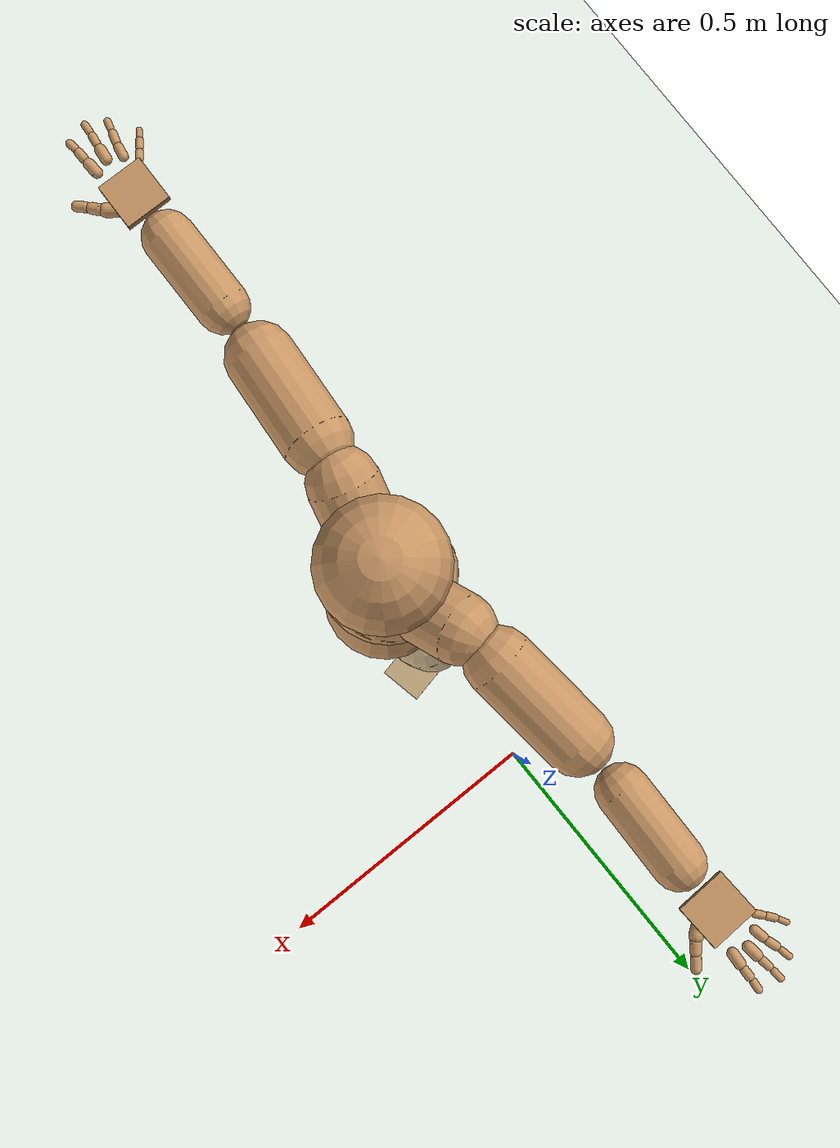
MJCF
<mujoco model="humanoid">
  <compiler coordinate="local" angle="radian"/>
  <default>
    <joint damping="0.0" armature="0.01" stiffness="0.0" limited="true"/>
    <geom conaffinity="1" condim="3" contype="7" margin="0.001" rgba="0.8 0.6 .4 1"/>
  </default>
  <asset>
    <texture type="skybox" builtin="gradient" rgb1=".4 .5 .6" rgb2="0 0 0" width="100" height="100"/>
    <texture builtin="flat" height="1278" mark="cross" markrgb="1 1 1" name="texgeom" random="0.01" rgb1="0.8 0.6 0.4" rgb2="0.8 0.6 0.4" type="cube" width="127"/>
    <texture builtin="checker" height="100" name="texplane" rgb1="0 0 0" rgb2="0.8 0.8 0.8" type="2d" width="100"/>
    <material name="MatPlane" reflectance="0.5" shininess="1" specular="1" texrepeat="60 60" texture="texplane"/>
    <material name="geom" texture="texgeom" texuniform="true"/>
  </asset>
  <worldbody>
    <light cutoff="100" diffuse="1 1 1" dir="-0 0 -1.3" directional="true" exponent="1" pos="0 0 1.3" specular=".1 .1 .1"/>
    <geom conaffinity="1" condim="3" name="floor" pos="0 0 0" rgba="0.8 0.9 0.8 1" size="100 100 .2" type="plane" material="MatPlane"/>
    <body name="Pelvis" pos="0.0008 -0.368 0.0087">
      <freejoint name="Pelvis"/>
      <geom type="sphere" contype="1" conaffinity="1" density="500" size="0.1135" pos="0.0000 0.0000 0.0000" name="Pelvis"/>
      <body name="L_Hip" pos="-0.0118 0.0838 -0.0971">
        <joint name="L_Hip_x" type="hinge" pos="0 0 0" axis="1 0 0" stiffness="800" damping="80" armature="0.02" range="-180.0000 180.0000"/>
        <joint name="L_Hip_y" type="hinge" pos="0 0 0" axis="0 1 0" stiffness="800" damping="80" armature="0.02" range="-180.0000 180.0000"/>
        <joint name="L_Hip_z" type="hinge" pos="0 0 0" axis="0 0 1" stiffness="800" damping="80" armature="0.02" range="-180.0000 180.0000"/>
        <geom type="capsule" contype="1" conaffinity="1" density="500" fromto="-0.0044 0.0052 -0.0775 -0.0175 0.0206 -0.3100" size="0.067" name="L_Hip"/>
        <body name="L_Knee" pos="-0.0219 0.0258 -0.3875">
          <joint name="L_Knee_x" type="hinge" pos="0 0 0" axis="1 0 0" stiffness="800" damping="80" armature="0.02" range="-180.0000 180.0000"/>
          <joint name="L_Knee_y" type="hinge" pos="0 0 0" axis="0 1 0" stiffness="800" damping="80" armature="0.02" range="-180.0000 180.0000"/>
          <joint name="L_Knee_z" type="hinge" pos="0 0 0" axis="0 0 1" stiffness="800" damping="80" armature="0.02" range="-180.0000 180.0000"/>
          <geom type="capsule" contype="1" conaffinity="1" density="500" fromto="-0.0052 -0.0021 -0.0808 -0.0208 -0.0082 -0.3230" size="0.0611" name="L_Knee"/>
          <body name="L_Ankle" pos="-0.026 -0.0103 -0.4038">
            <joint name="L_Ankle_x" type="hinge" pos="0 0 0" axis="1 0 0" stiffness="800" damping="80" armature="0.02" range="-180.0000 180.0000"/>
            <joint name="L_Ankle_y" type="hinge" pos="0 0 0" axis="0 1 0" stiffness="800" damping="80" armature="0.02" range="-180.0000 180.0000"/>
            <joint name="L_Ankle_z" type="hinge" pos="0 0 0" axis="0 0 1" stiffness="800" damping="80" armature="0.02" range="-180.0000 180.0000"/>
            <geom type="box" contype="1" conaffinity="1" density="500" pos="0.0563 0.0114 -0.0223" size="0.0907 0.05 0.0212" quat="0.9950 0.0000 0.0000 0.1002" name="L_Ankle"/>
            <body name="L_Toe" pos="0.1126 0.0229 -0.0445">
              <joint name="L_Toe_x" type="hinge" pos="0 0 0" axis="1 0 0" stiffness="500" damping="50" armature="0.02" range="-180.0000 180.0000"/>
              <joint name="L_Toe_y" type="hinge" pos="0 0 0" axis="0 1 0" stiffness="500" damping="50" armature="0.02" range="-180.0000 180.0000"/>
              <joint name="L_Toe_z" type="hinge" pos="0 0 0" axis="0 0 1" stiffness="500" damping="50" armature="0.02" range="-180.0000 180.0000"/>
              <geom type="box" contype="1" conaffinity="1" density="500" pos="0.0000 0.0000 0.0223" size="0.001 0.0025 0.0011" quat="0.9943 0.0000 0.0000 0.1068" name="L_Toe"/>
            </body>
          </body>
        </body>
      </body>
      <body name="R_Hip" pos="-0.0127 -0.0831 -0.1036">
        <joint name="R_Hip_x" type="hinge" pos="0 0 0" axis="1 0 0" stiffness="800" damping="80" armature="0.02" range="-180.0000 180.0000"/>
        <joint name="R_Hip_y" type="hinge" pos="0 0 0" axis="0 1 0" stiffness="800" damping="80" armature="0.02" range="-180.0000 180.0000"/>
        <joint name="R_Hip_z" type="hinge" pos="0 0 0" axis="0 0 1" stiffness="800" damping="80" armature="0.02" range="-180.0000 180.0000"/>
        <geom type="capsule" contype="1" conaffinity="1" density="500" fromto="-0.0031 -0.0061 -0.0767 -0.0123 -0.0242 -0.3068" size="0.0669" name="R_Hip"/>
        <body name="R_Knee" pos="-0.0154 -0.0303 -0.3835">
          <joint name="R_Knee_x" type="hinge" pos="0 0 0" axis="1 0 0" stiffness="800" damping="80" armature="0.02" range="-180.0000 180.0000"/>
          <joint name="R_Knee_y" type="hinge" pos="0 0 0" axis="0 1 0" stiffness="800" damping="80" armature="0.02" range="-180.0000 180.0000"/>
          <joint name="R_Knee_z" type="hinge" pos="0 0 0" axis="0 0 1" stiffness="800" damping="80" armature="0.02" range="-180.0000 180.0000"/>
          <geom type="capsule" contype="1" conaffinity="1" density="500" fromto="-0.0045 0.0010 -0.0789 -0.0182 0.0042 -0.3158" size="0.0611" name="R_Knee"/>
          <body name="R_Ankle" pos="-0.0227 0.0052 -0.3947">
            <joint name="R_Ankle_x" type="hinge" pos="0 0 0" axis="1 0 0" stiffness="800" damping="80" armature="0.02" range="-180.0000 180.0000"/>
            <joint name="R_Ankle_y" type="hinge" pos="0 0 0" axis="0 1 0" stiffness="800" damping="80" armature="0.02" range="-180.0000 180.0000"/>
            <joint name="R_Ankle_z" type="hinge" pos="0 0 0" axis="0 0 1" stiffness="800" damping="80" armature="0.02" range="-180.0000 180.0000"/>
            <geom type="box" contype="1" conaffinity="1" density="500" pos="0.0531 -0.0092 -0.0239" size="0.0907 0.05 0.0212" quat="0.9963 0.0000 0.0000 -0.0860" name="R_Ankle"/>
            <body name="R_Toe" pos="0.1062 -0.0185 -0.0479">
              <joint name="R_Toe_x" type="hinge" pos="0 0 0" axis="1 0 0" stiffness="500" damping="50" armature="0.02" range="-180.0000 180.0000"/>
              <joint name="R_Toe_y" type="hinge" pos="0 0 0" axis="0 1 0" stiffness="500" damping="50" armature="0.02" range="-180.0000 180.0000"/>
              <joint name="R_Toe_z" type="hinge" pos="0 0 0" axis="0 0 1" stiffness="500" damping="50" armature="0.02" range="-180.0000 180.0000"/>
              <geom type="box" contype="1" conaffinity="1" density="500" pos="0.0000 0.0000 0.0239" size="0.001 0.0025 0.0011" quat="0.9971 0.0000 0.0000 -0.0754" name="R_Toe"/>
            </body>
          </body>
        </body>
      </body>
      <body name="Torso" pos="-0.0299 -0.0064 0.1147">
        <joint name="Torso_x" type="hinge" pos="0 0 0" axis="1 0 0" stiffness="1000" damping="100" armature="0.02" range="-180.0000 180.0000"/>
        <joint name="Torso_y" type="hinge" pos="0 0 0" axis="0 1 0" stiffness="1000" damping="100" armature="0.02" range="-180.0000 180.0000"/>
        <joint name="Torso_z" type="hinge" pos="0 0 0" axis="0 0 1" stiffness="1000" damping="100" armature="0.02" range="-180.0000 180.0000"/>
        <geom type="capsule" contype="1" conaffinity="1" density="500" fromto="-0.0095 0.0072 0.0795 -0.0063 0.0048 0.0530" size="0.0855" name="Torso"/>
        <body name="Spine" pos="-0.0159 0.0121 0.1325">
          <joint name="Spine_x" type="hinge" pos="0 0 0" axis="1 0 0" stiffness="1000" damping="100" armature="0.02" range="-180.0000 180.0000"/>
          <joint name="Spine_y" type="hinge" pos="0 0 0" axis="0 1 0" stiffness="1000" damping="100" armature="0.02" range="-180.0000 180.0000"/>
          <joint name="Spine_z" type="hinge" pos="0 0 0" axis="0 0 1" stiffness="1000" damping="100" armature="0.02" range="-180.0000 180.0000"/>
          <geom type="capsule" contype="1" conaffinity="1" density="500" fromto="0.0239 -0.0038 0.0305 0.0159 -0.0025 0.0204" size="0.07" name="Spine"/>
          <body name="Chest" pos="0.0398 -0.0063 0.0509">
            <joint name="Chest_x" type="hinge" pos="0 0 0" axis="1 0 0" stiffness="1000" damping="100" armature="0.02" range="-180.0000 180.0000"/>
            <joint name="Chest_y" type="hinge" pos="0 0 0" axis="0 1 0" stiffness="1000" damping="100" armature="0.02" range="-180.0000 180.0000"/>
            <joint name="Chest_z" type="hinge" pos="0 0 0" axis="0 0 1" stiffness="1000" damping="100" armature="0.02" range="-180.0000 180.0000"/>
            <geom type="capsule" contype="1" conaffinity="1" density="500" fromto="-0.0144 -0.0020 0.0882 -0.0096 -0.0013 0.0588" size="0.1124" name="Chest"/>
            <body name="Neck" pos="-0.036 -0.0068 0.2023">
              <joint name="Neck_x" type="hinge" pos="0 0 0" axis="1 0 0" stiffness="500" damping="50" armature="0.02" range="-180.0000 180.0000"/>
              <joint name="Neck_y" type="hinge" pos="0 0 0" axis="0 1 0" stiffness="500" damping="50" armature="0.02" range="-180.0000 180.0000"/>
              <joint name="Neck_z" type="hinge" pos="0 0 0" axis="0 0 1" stiffness="500" damping="50" armature="0.02" range="-180.0000 180.0000"/>
              <geom type="capsule" contype="1" conaffinity="1" density="500" fromto="0.0061 0.0019 0.0279 0.0244 0.0076 0.1114" size="0.0436" name="Neck"/>
              <body name="Head" pos="0.0306 0.0095 0.1393">
                <joint name="Head_x" type="hinge" pos="0 0 0" axis="1 0 0" stiffness="500" damping="50" armature="0.02" range="-180.0000 180.0000"/>
                <joint name="Head_y" type="hinge" pos="0 0 0" axis="0 1 0" stiffness="500" damping="50" armature="0.02" range="-180.0000 180.0000"/>
                <joint name="Head_z" type="hinge" pos="0 0 0" axis="0 0 1" stiffness="500" damping="50" armature="0.02" range="-180.0000 180.0000"/>
                <geom type="sphere" contype="1" conaffinity="1" density="500" size="0.1034" pos="0.0000 0.0000 0.0000" name="Head"/>
              </body>
            </body>
            <body name="L_Thorax" pos="-0.0138 0.0589 0.1215">
              <joint name="L_Thorax_x" type="hinge" pos="0 0 0" axis="1 0 0" stiffness="500" damping="50" armature="0.02" range="-180.0000 180.0000"/>
              <joint name="L_Thorax_y" type="hinge" pos="0 0 0" axis="0 1 0" stiffness="500" damping="50" armature="0.02" range="-180.0000 180.0000"/>
              <joint name="L_Thorax_z" type="hinge" pos="0 0 0" axis="0 0 1" stiffness="500" damping="50" armature="0.02" range="-180.0000 180.0000"/>
              <geom type="capsule" contype="1" conaffinity="1" density="500" fromto="-0.0073 0.0203 0.0098 -0.0292 0.0812 0.0391" size="0.0588" name="L_Thorax"/>
              <body name="L_Shoulder" pos="-0.0365 0.1015 0.0489">
                <joint name="L_Shoulder_x" type="hinge" pos="0 0 0" axis="1 0 0" stiffness="500" damping="50" armature="0.02" range="-180.0000 180.0000"/>
                <joint name="L_Shoulder_y" type="hinge" pos="0 0 0" axis="0 1 0" stiffness="500" damping="50" armature="0.02" range="-180.0000 180.0000"/>
                <joint name="L_Shoulder_z" type="hinge" pos="0 0 0" axis="0 0 1" stiffness="500" damping="50" armature="0.02" range="-180.0000 180.0000"/>
                <geom type="capsule" contype="1" conaffinity="1" density="500" fromto="-0.0065 0.0572 -0.0115 -0.0259 0.2288 -0.0460" size="0.0578" name="L_Shoulder"/>
                <body name="L_Elbow" pos="-0.0324 0.286 -0.0575">
                  <joint name="L_Elbow_x" type="hinge" pos="0 0 0" axis="1 0 0" stiffness="500" damping="50" armature="0.02" range="-720.0000 720.0000"/>
                  <joint name="L_Elbow_y" type="hinge" pos="0 0 0" axis="0 1 0" stiffness="500" damping="50" armature="0.02" range="-720.0000 720.0000"/>
                  <joint name="L_Elbow_z" type="hinge" pos="0 0 0" axis="0 0 1" stiffness="500" damping="50" armature="0.02" range="-720.0000 720.0000"/>
                  <geom type="capsule" contype="1" conaffinity="1" density="500" fromto="0.0012 0.0474 0.0020 0.0047 0.1897 0.0078" size="0.044" name="L_Elbow"/>
                  <body name="L_Wrist" pos="0.0059 0.2372 0.0098">
                    <joint name="L_Wrist_x" type="hinge" pos="0 0 0" axis="1 0 0" stiffness="300" damping="30" armature="0.02" range="-180.0000 180.0000"/>
                    <joint name="L_Wrist_y" type="hinge" pos="0 0 0" axis="0 1 0" stiffness="300" damping="30" armature="0.02" range="-180.0000 180.0000"/>
                    <joint name="L_Wrist_z" type="hinge" pos="0 0 0" axis="0 0 1" stiffness="300" damping="30" armature="0.02" range="-180.0000 180.0000"/>
                    <geom type="box" contype="1" conaffinity="1" density="500" pos="-0.0023 0.0454 -0.0085" size="0.0404 0.0435 0.0077" quat="0.7246 0.0000 0.0000 -0.6892" name="L_Wrist"/>
                    <body name="L_Index1" pos="0.0211 0.1066 -0.0147">
                      <joint name="L_Index1_x" type="hinge" pos="0 0 0" axis="1 0 0" stiffness="100" damping="10" armature="0.02" range="-180.0000 180.0000"/>
                      <joint name="L_Index1_y" type="hinge" pos="0 0 0" axis="0 1 0" stiffness="100" damping="10" armature="0.02" range="-180.0000 180.0000"/>
                      <joint name="L_Index1_z" type="hinge" pos="0 0 0" axis="0 0 1" stiffness="100" damping="10" armature="0.02" range="-180.0000 180.0000"/>
                      <geom type="capsule" contype="1" conaffinity="1" density="500" fromto="0.0006 0.0064 0.0006 0.0022 0.0257 0.0025" size="0.0093" name="L_Index1"/>
                      <body name="L_Index2" pos="0.0028 0.0321 0.0032">
                        <joint name="L_Index2_x" type="hinge" pos="0 0 0" axis="1 0 0" stiffness="100" damping="10" armature="0.02" range="-180.0000 180.0000"/>
                        <joint name="L_Index2_y" type="hinge" pos="0 0 0" axis="0 1 0" stiffness="100" damping="10" armature="0.02" range="-180.0000 180.0000"/>
                        <joint name="L_Index2_z" type="hinge" pos="0 0 0" axis="0 0 1" stiffness="100" damping="10" armature="0.02" range="-180.0000 180.0000"/>
                        <geom type="capsule" contype="1" conaffinity="1" density="500" fromto="0.0001 0.0045 -0.0003 0.0003 0.0181 -0.0011" size="0.0076" name="L_Index2"/>
                        <body name="L_Index3" pos="0.0004 0.0226 -0.0014">
                          <joint name="L_Index3_x" type="hinge" pos="0 0 0" axis="1 0 0" stiffness="100" damping="10" armature="0.02" range="-180.0000 180.0000"/>
                          <joint name="L_Index3_y" type="hinge" pos="0 0 0" axis="0 1 0" stiffness="100" damping="10" armature="0.02" range="-180.0000 180.0000"/>
                          <joint name="L_Index3_z" type="hinge" pos="0 0 0" axis="0 0 1" stiffness="100" damping="10" armature="0.02" range="-180.0000 180.0000"/>
                          <geom type="capsule" contype="1" conaffinity="1" density="500" fromto="0.0005 0.0049 0.0001 0.0019 0.0197 0.0005" size="0.0064" name="L_Index3"/>
                        </body>
                      </body>
                    </body>
                    <body name="L_Middle1" pos="-0.0024 0.1139 -0.0121">
                      <joint name="L_Middle1_x" type="hinge" pos="0 0 0" axis="1 0 0" stiffness="100" damping="10" armature="0.02" range="-180.0000 180.0000"/>
                      <joint name="L_Middle1_y" type="hinge" pos="0 0 0" axis="0 1 0" stiffness="100" damping="10" armature="0.02" range="-180.0000 180.0000"/>
                      <joint name="L_Middle1_z" type="hinge" pos="0 0 0" axis="0 0 1" stiffness="100" damping="10" armature="0.02" range="-180.0000 180.0000"/>
                      <geom type="capsule" contype="1" conaffinity="1" density="500" fromto="-0.0007 0.0061 0.0003 -0.0030 0.0245 0.0013" size="0.0095" name="L_Middle1"/>
                      <body name="L_Middle2" pos="-0.0037 0.0306 0.0016">
                        <joint name="L_Middle2_x" type="hinge" pos="0 0 0" axis="1 0 0" stiffness="100" damping="10" armature="0.02" range="-180.0000 180.0000"/>
                        <joint name="L_Middle2_y" type="hinge" pos="0 0 0" axis="0 1 0" stiffness="100" damping="10" armature="0.02" range="-180.0000 180.0000"/>
                        <joint name="L_Middle2_z" type="hinge" pos="0 0 0" axis="0 0 1" stiffness="100" damping="10" armature="0.02" range="-180.0000 180.0000"/>
                        <geom type="capsule" contype="1" conaffinity="1" density="500" fromto="-0.0008 0.0047 -0.0001 -0.0030 0.0189 -0.0006" size="0.007" name="L_Middle2"/>
                        <body name="L_Middle3" pos="-0.0038 0.0236 -0.0007">
                          <joint name="L_Middle3_x" type="hinge" pos="0 0 0" axis="1 0 0" stiffness="100" damping="10" armature="0.02" range="-180.0000 180.0000"/>
                          <joint name="L_Middle3_y" type="hinge" pos="0 0 0" axis="0 1 0" stiffness="100" damping="10" armature="0.02" range="-180.0000 180.0000"/>
                          <joint name="L_Middle3_z" type="hinge" pos="0 0 0" axis="0 0 1" stiffness="100" damping="10" armature="0.02" range="-180.0000 180.0000"/>
                          <geom type="capsule" contype="1" conaffinity="1" density="500" fromto="-0.0004 0.0051 0.0003 -0.0014 0.0205 0.0010" size="0.006" name="L_Middle3"/>
                        </body>
                      </body>
                    </body>
                    <body name="L_Pinky1" pos="-0.0429 0.0874 -0.0204">
                      <joint name="L_Pinky1_x" type="hinge" pos="0 0 0" axis="1 0 0" stiffness="100" damping="10" armature="0.02" range="-180.0000 180.0000"/>
                      <joint name="L_Pinky1_y" type="hinge" pos="0 0 0" axis="0 1 0" stiffness="100" damping="10" armature="0.02" range="-180.0000 180.0000"/>
                      <joint name="L_Pinky1_z" type="hinge" pos="0 0 0" axis="0 0 1" stiffness="100" damping="10" armature="0.02" range="-180.0000 180.0000"/>
                      <geom type="capsule" contype="1" conaffinity="1" density="500" fromto="-0.0025 0.0030 -0.0001 -0.0098 0.0119 -0.0005" size="0.0067" name="L_Pinky1"/>
                      <body name="L_Pinky2" pos="-0.0123 0.0149 -0.0006">
                        <joint name="L_Pinky2_x" type="hinge" pos="0 0 0" axis="1 0 0" stiffness="100" damping="10" armature="0.02" range="-180.0000 180.0000"/>
                        <joint name="L_Pinky2_y" type="hinge" pos="0 0 0" axis="0 1 0" stiffness="100" damping="10" armature="0.02" range="-180.0000 180.0000"/>
                        <joint name="L_Pinky2_z" type="hinge" pos="0 0 0" axis="0 0 1" stiffness="100" damping="10" armature="0.02" range="-180.0000 180.0000"/>
                        <geom type="capsule" contype="1" conaffinity="1" density="500" fromto="-0.0024 0.0030 -0.0002 -0.0094 0.0121 -0.0009" size="0.0065" name="L_Pinky2"/>
                        <body name="L_Pinky3" pos="-0.0118 0.0152 -0.0011">
                          <joint name="L_Pinky3_x" type="hinge" pos="0 0 0" axis="1 0 0" stiffness="100" damping="10" armature="0.02" range="-180.0000 180.0000"/>
                          <joint name="L_Pinky3_y" type="hinge" pos="0 0 0" axis="0 1 0" stiffness="100" damping="10" armature="0.02" range="-180.0000 180.0000"/>
                          <joint name="L_Pinky3_z" type="hinge" pos="0 0 0" axis="0 0 1" stiffness="100" damping="10" armature="0.02" range="-180.0000 180.0000"/>
                          <geom type="capsule" contype="1" conaffinity="1" density="500" fromto="-0.0020 0.0034 0.0002 -0.0078 0.0137 0.0007" size="0.005" name="L_Pinky3"/>
                        </body>
                      </body>
                    </body>
                    <body name="L_Ring1" pos="-0.0264 0.1013 -0.015">
                      <joint name="L_Ring1_x" type="hinge" pos="0 0 0" axis="1 0 0" stiffness="100" damping="10" armature="0.02" range="-180.0000 180.0000"/>
                      <joint name="L_Ring1_y" type="hinge" pos="0 0 0" axis="0 1 0" stiffness="100" damping="10" armature="0.02" range="-180.0000 180.0000"/>
                      <joint name="L_Ring1_z" type="hinge" pos="0 0 0" axis="0 0 1" stiffness="100" damping="10" armature="0.02" range="-180.0000 180.0000"/>
                      <geom type="capsule" contype="1" conaffinity="1" density="500" fromto="-0.0011 0.0056 0.0003 -0.0043 0.0224 0.0014" size="0.0082" name="L_Ring1"/>
                      <body name="L_Ring2" pos="-0.0054 0.028 0.0017">
                        <joint name="L_Ring2_x" type="hinge" pos="0 0 0" axis="1 0 0" stiffness="100" damping="10" armature="0.02" range="-180.0000 180.0000"/>
                        <joint name="L_Ring2_y" type="hinge" pos="0 0 0" axis="0 1 0" stiffness="100" damping="10" armature="0.02" range="-180.0000 180.0000"/>
                        <joint name="L_Ring2_z" type="hinge" pos="0 0 0" axis="0 0 1" stiffness="100" damping="10" armature="0.02" range="-180.0000 180.0000"/>
                        <geom type="capsule" contype="1" conaffinity="1" density="500" fromto="-0.0015 0.0045 -0.0002 -0.0058 0.0181 -0.0009" size="0.0074" name="L_Ring2"/>
                        <body name="L_Ring3" pos="-0.0073 0.0227 -0.0011">
                          <joint name="L_Ring3_x" type="hinge" pos="0 0 0" axis="1 0 0" stiffness="100" damping="10" armature="0.02" range="-180.0000 180.0000"/>
                          <joint name="L_Ring3_y" type="hinge" pos="0 0 0" axis="0 1 0" stiffness="100" damping="10" armature="0.02" range="-180.0000 180.0000"/>
                          <joint name="L_Ring3_z" type="hinge" pos="0 0 0" axis="0 0 1" stiffness="100" damping="10" armature="0.02" range="-180.0000 180.0000"/>
                          <geom type="capsule" contype="1" conaffinity="1" density="500" fromto="-0.0011 0.0049 0.0002 -0.0042 0.0197 0.0007" size="0.0057" name="L_Ring3"/>
                        </body>
                      </body>
                    </body>
                    <body name="L_Thumb1" pos="0.0279 0.0443 -0.0234">
                      <joint name="L_Thumb1_x" type="hinge" pos="0 0 0" axis="1 0 0" stiffness="100" damping="10" armature="0.02" range="-180.0000 180.0000"/>
                      <joint name="L_Thumb1_y" type="hinge" pos="0 0 0" axis="0 1 0" stiffness="100" damping="10" armature="0.02" range="-180.0000 180.0000"/>
                      <joint name="L_Thumb1_z" type="hinge" pos="0 0 0" axis="0 0 1" stiffness="100" damping="10" armature="0.02" range="-180.0000 180.0000"/>
                      <geom type="capsule" contype="1" conaffinity="1" density="500" fromto="0.0049 0.0035 0.0002 0.0196 0.0139 0.0009" size="0.0123" name="L_Thumb1"/>
                      <body name="L_Thumb2" pos="0.0245 0.0173 0.0012">
                        <joint name="L_Thumb2_x" type="hinge" pos="0 0 0" axis="1 0 0" stiffness="100" damping="10" armature="0.02" range="-180.0000 180.0000"/>
                        <joint name="L_Thumb2_y" type="hinge" pos="0 0 0" axis="0 1 0" stiffness="100" damping="10" armature="0.02" range="-180.0000 180.0000"/>
                        <joint name="L_Thumb2_z" type="hinge" pos="0 0 0" axis="0 0 1" stiffness="100" damping="10" armature="0.02" range="-180.0000 180.0000"/>
                        <geom type="capsule" contype="1" conaffinity="1" density="500" fromto="0.0030 0.0041 -0.0012 0.0118 0.0163 -0.0048" size="0.0096" name="L_Thumb2"/>
                        <body name="L_Thumb3" pos="0.0148 0.0204 -0.006">
                          <joint name="L_Thumb3_x" type="hinge" pos="0 0 0" axis="1 0 0" stiffness="100" damping="10" armature="0.02" range="-180.0000 180.0000"/>
                          <joint name="L_Thumb3_y" type="hinge" pos="0 0 0" axis="0 1 0" stiffness="100" damping="10" armature="0.02" range="-180.0000 180.0000"/>
                          <joint name="L_Thumb3_z" type="hinge" pos="0 0 0" axis="0 0 1" stiffness="100" damping="10" armature="0.02" range="-180.0000 180.0000"/>
                          <geom type="capsule" contype="1" conaffinity="1" density="500" fromto="0.0034 0.0045 -0.0008 0.0134 0.0179 -0.0032" size="0.0089" name="L_Thumb3"/>
                        </body>
                      </body>
                    </body>
                  </body>
                </body>
              </body>
            </body>
            <body name="R_Thorax" pos="-0.0221 -0.0622 0.1172">
              <joint name="R_Thorax_x" type="hinge" pos="0 0 0" axis="1 0 0" stiffness="500" damping="50" armature="0.02" range="-180.0000 180.0000"/>
              <joint name="R_Thorax_y" type="hinge" pos="0 0 0" axis="0 1 0" stiffness="500" damping="50" armature="0.02" range="-180.0000 180.0000"/>
              <joint name="R_Thorax_z" type="hinge" pos="0 0 0" axis="0 0 1" stiffness="500" damping="50" armature="0.02" range="-180.0000 180.0000"/>
              <geom type="capsule" contype="1" conaffinity="1" density="500" fromto="-0.0056 -0.0221 0.0102 -0.0223 -0.0883 0.0409" size="0.06" name="R_Thorax"/>
              <body name="R_Shoulder" pos="-0.0279 -0.1104 0.0511">
                <joint name="R_Shoulder_x" type="hinge" pos="0 0 0" axis="1 0 0" stiffness="500" damping="50" armature="0.02" range="-180.0000 180.0000"/>
                <joint name="R_Shoulder_y" type="hinge" pos="0 0 0" axis="0 1 0" stiffness="500" damping="50" armature="0.02" range="-180.0000 180.0000"/>
                <joint name="R_Shoulder_z" type="hinge" pos="0 0 0" axis="0 0 1" stiffness="500" damping="50" armature="0.02" range="-180.0000 180.0000"/>
                <geom type="capsule" contype="1" conaffinity="1" density="500" fromto="-0.0049 -0.0551 -0.0104 -0.0197 -0.2202 -0.0417" size="0.0583" name="R_Shoulder"/>
                <body name="R_Elbow" pos="-0.0246 -0.2753 -0.0522">
                  <joint name="R_Elbow_x" type="hinge" pos="0 0 0" axis="1 0 0" stiffness="500" damping="50" armature="0.02" range="-720.0000 720.0000"/>
                  <joint name="R_Elbow_y" type="hinge" pos="0 0 0" axis="0 1 0" stiffness="500" damping="50" armature="0.02" range="-720.0000 720.0000"/>
                  <joint name="R_Elbow_z" type="hinge" pos="0 0 0" axis="0 0 1" stiffness="500" damping="50" armature="0.02" range="-720.0000 720.0000"/>
                  <geom type="capsule" contype="1" conaffinity="1" density="500" fromto="-0.0008 -0.0475 0.0011 -0.0032 -0.1900 0.0044" size="0.0441" name="R_Elbow"/>
                  <body name="R_Wrist" pos="-0.0041 -0.2374 0.0055">
                    <joint name="R_Wrist_x" type="hinge" pos="0 0 0" axis="1 0 0" stiffness="300" damping="30" armature="0.02" range="-180.0000 180.0000"/>
                    <joint name="R_Wrist_y" type="hinge" pos="0 0 0" axis="0 1 0" stiffness="300" damping="30" armature="0.02" range="-180.0000 180.0000"/>
                    <joint name="R_Wrist_z" type="hinge" pos="0 0 0" axis="0 0 1" stiffness="300" damping="30" armature="0.02" range="-180.0000 180.0000"/>
                    <geom type="box" contype="1" conaffinity="1" density="500" pos="-0.0013 -0.0447 -0.0081" size="0.0404 0.0407 0.008" quat="0.7176 0.0000 0.0000 0.6965" name="R_Wrist"/>
                    <body name="R_Index1" pos="0.023 -0.1052 -0.0137">
                      <joint name="R_Index1_x" type="hinge" pos="0 0 0" axis="1 0 0" stiffness="100" damping="10" armature="0.02" range="-180.0000 180.0000"/>
                      <joint name="R_Index1_y" type="hinge" pos="0 0 0" axis="0 1 0" stiffness="100" damping="10" armature="0.02" range="-180.0000 180.0000"/>
                      <joint name="R_Index1_z" type="hinge" pos="0 0 0" axis="0 0 1" stiffness="100" damping="10" armature="0.02" range="-180.0000 180.0000"/>
                      <geom type="capsule" contype="1" conaffinity="1" density="500" fromto="0.0006 -0.0064 0.0006 0.0022 -0.0257 0.0025" size="0.0093" name="R_Index1"/>
                      <body name="R_Index2" pos="0.0028 -0.0321 0.0031">
                        <joint name="R_Index2_x" type="hinge" pos="0 0 0" axis="1 0 0" stiffness="100" damping="10" armature="0.02" range="-180.0000 180.0000"/>
                        <joint name="R_Index2_y" type="hinge" pos="0 0 0" axis="0 1 0" stiffness="100" damping="10" armature="0.02" range="-180.0000 180.0000"/>
                        <joint name="R_Index2_z" type="hinge" pos="0 0 0" axis="0 0 1" stiffness="100" damping="10" armature="0.02" range="-180.0000 180.0000"/>
                        <geom type="capsule" contype="1" conaffinity="1" density="500" fromto="0.0001 -0.0045 -0.0003 0.0003 -0.0181 -0.0011" size="0.0076" name="R_Index2"/>
                        <body name="R_Index3" pos="0.0004 -0.0226 -0.0014">
                          <joint name="R_Index3_x" type="hinge" pos="0 0 0" axis="1 0 0" stiffness="100" damping="10" armature="0.02" range="-180.0000 180.0000"/>
                          <joint name="R_Index3_y" type="hinge" pos="0 0 0" axis="0 1 0" stiffness="100" damping="10" armature="0.02" range="-180.0000 180.0000"/>
                          <joint name="R_Index3_z" type="hinge" pos="0 0 0" axis="0 0 1" stiffness="100" damping="10" armature="0.02" range="-180.0000 180.0000"/>
                          <geom type="capsule" contype="1" conaffinity="1" density="500" fromto="0.0005 -0.0041 0.0001 0.0019 -0.0165 0.0005" size="0.0066" name="R_Index3"/>
                        </body>
                      </body>
                    </body>
                    <body name="R_Middle1" pos="-0.0005 -0.1126 -0.0111">
                      <joint name="R_Middle1_x" type="hinge" pos="0 0 0" axis="1 0 0" stiffness="100" damping="10" armature="0.02" range="-180.0000 180.0000"/>
                      <joint name="R_Middle1_y" type="hinge" pos="0 0 0" axis="0 1 0" stiffness="100" damping="10" armature="0.02" range="-180.0000 180.0000"/>
                      <joint name="R_Middle1_z" type="hinge" pos="0 0 0" axis="0 0 1" stiffness="100" damping="10" armature="0.02" range="-180.0000 180.0000"/>
                      <geom type="capsule" contype="1" conaffinity="1" density="500" fromto="-0.0007 -0.0061 0.0003 -0.0030 -0.0245 0.0013" size="0.0095" name="R_Middle1"/>
                      <body name="R_Middle2" pos="-0.0037 -0.0306 0.0016">
                        <joint name="R_Middle2_x" type="hinge" pos="0 0 0" axis="1 0 0" stiffness="100" damping="10" armature="0.02" range="-180.0000 180.0000"/>
                        <joint name="R_Middle2_y" type="hinge" pos="0 0 0" axis="0 1 0" stiffness="100" damping="10" armature="0.02" range="-180.0000 180.0000"/>
                        <joint name="R_Middle2_z" type="hinge" pos="0 0 0" axis="0 0 1" stiffness="100" damping="10" armature="0.02" range="-180.0000 180.0000"/>
                        <geom type="capsule" contype="1" conaffinity="1" density="500" fromto="-0.0008 -0.0047 -0.0001 -0.0030 -0.0189 -0.0006" size="0.007" name="R_Middle2"/>
                        <body name="R_Middle3" pos="-0.0038 -0.0236 -0.0007">
                          <joint name="R_Middle3_x" type="hinge" pos="0 0 0" axis="1 0 0" stiffness="100" damping="10" armature="0.02" range="-180.0000 180.0000"/>
                          <joint name="R_Middle3_y" type="hinge" pos="0 0 0" axis="0 1 0" stiffness="100" damping="10" armature="0.02" range="-180.0000 180.0000"/>
                          <joint name="R_Middle3_z" type="hinge" pos="0 0 0" axis="0 0 1" stiffness="100" damping="10" armature="0.02" range="-180.0000 180.0000"/>
                          <geom type="capsule" contype="1" conaffinity="1" density="500" fromto="-0.0004 -0.0043 0.0003 -0.0014 -0.0173 0.0010" size="0.0063" name="R_Middle3"/>
                        </body>
                      </body>
                    </body>
                    <body name="R_Pinky1" pos="-0.041 -0.0861 -0.0194">
                      <joint name="R_Pinky1_x" type="hinge" pos="0 0 0" axis="1 0 0" stiffness="100" damping="10" armature="0.02" range="-180.0000 180.0000"/>
                      <joint name="R_Pinky1_y" type="hinge" pos="0 0 0" axis="0 1 0" stiffness="100" damping="10" armature="0.02" range="-180.0000 180.0000"/>
                      <joint name="R_Pinky1_z" type="hinge" pos="0 0 0" axis="0 0 1" stiffness="100" damping="10" armature="0.02" range="-180.0000 180.0000"/>
                      <geom type="capsule" contype="1" conaffinity="1" density="500" fromto="-0.0025 -0.0030 -0.0001 -0.0098 -0.0119 -0.0005" size="0.0067" name="R_Pinky1"/>
                      <body name="R_Pinky2" pos="-0.0123 -0.0149 -0.0006">
                        <joint name="R_Pinky2_x" type="hinge" pos="0 0 0" axis="1 0 0" stiffness="100" damping="10" armature="0.02" range="-180.0000 180.0000"/>
                        <joint name="R_Pinky2_y" type="hinge" pos="0 0 0" axis="0 1 0" stiffness="100" damping="10" armature="0.02" range="-180.0000 180.0000"/>
                        <joint name="R_Pinky2_z" type="hinge" pos="0 0 0" axis="0 0 1" stiffness="100" damping="10" armature="0.02" range="-180.0000 180.0000"/>
                        <geom type="capsule" contype="1" conaffinity="1" density="500" fromto="-0.0024 -0.0030 -0.0002 -0.0094 -0.0121 -0.0009" size="0.0065" name="R_Pinky2"/>
                        <body name="R_Pinky3" pos="-0.0118 -0.0152 -0.0011">
                          <joint name="R_Pinky3_x" type="hinge" pos="0 0 0" axis="1 0 0" stiffness="100" damping="10" armature="0.02" range="-180.0000 180.0000"/>
                          <joint name="R_Pinky3_y" type="hinge" pos="0 0 0" axis="0 1 0" stiffness="100" damping="10" armature="0.02" range="-180.0000 180.0000"/>
                          <joint name="R_Pinky3_z" type="hinge" pos="0 0 0" axis="0 0 1" stiffness="100" damping="10" armature="0.02" range="-180.0000 180.0000"/>
                          <geom type="capsule" contype="1" conaffinity="1" density="500" fromto="-0.0020 -0.0026 0.0002 -0.0078 -0.0105 0.0007" size="0.0052" name="R_Pinky3"/>
                        </body>
                      </body>
                    </body>
                    <body name="R_Ring1" pos="-0.0245 -0.1 -0.0141">
                      <joint name="R_Ring1_x" type="hinge" pos="0 0 0" axis="1 0 0" stiffness="100" damping="10" armature="0.02" range="-180.0000 180.0000"/>
                      <joint name="R_Ring1_y" type="hinge" pos="0 0 0" axis="0 1 0" stiffness="100" damping="10" armature="0.02" range="-180.0000 180.0000"/>
                      <joint name="R_Ring1_z" type="hinge" pos="0 0 0" axis="0 0 1" stiffness="100" damping="10" armature="0.02" range="-180.0000 180.0000"/>
                      <geom type="capsule" contype="1" conaffinity="1" density="500" fromto="-0.0011 -0.0056 0.0003 -0.0043 -0.0224 0.0014" size="0.0082" name="R_Ring1"/>
                      <body name="R_Ring2" pos="-0.0054 -0.028 0.0017">
                        <joint name="R_Ring2_x" type="hinge" pos="0 0 0" axis="1 0 0" stiffness="100" damping="10" armature="0.02" range="-180.0000 180.0000"/>
                        <joint name="R_Ring2_y" type="hinge" pos="0 0 0" axis="0 1 0" stiffness="100" damping="10" armature="0.02" range="-180.0000 180.0000"/>
                        <joint name="R_Ring2_z" type="hinge" pos="0 0 0" axis="0 0 1" stiffness="100" damping="10" armature="0.02" range="-180.0000 180.0000"/>
                        <geom type="capsule" contype="1" conaffinity="1" density="500" fromto="-0.0015 -0.0045 -0.0002 -0.0058 -0.0181 -0.0009" size="0.0074" name="R_Ring2"/>
                        <body name="R_Ring3" pos="-0.0073 -0.0227 -0.0011">
                          <joint name="R_Ring3_x" type="hinge" pos="0 0 0" axis="1 0 0" stiffness="100" damping="10" armature="0.02" range="-180.0000 180.0000"/>
                          <joint name="R_Ring3_y" type="hinge" pos="0 0 0" axis="0 1 0" stiffness="100" damping="10" armature="0.02" range="-180.0000 180.0000"/>
                          <joint name="R_Ring3_z" type="hinge" pos="0 0 0" axis="0 0 1" stiffness="100" damping="10" armature="0.02" range="-180.0000 180.0000"/>
                          <geom type="capsule" contype="1" conaffinity="1" density="500" fromto="-0.0011 -0.0041 0.0002 -0.0042 -0.0165 0.0007" size="0.006" name="R_Ring3"/>
                        </body>
                      </body>
                    </body>
                    <body name="R_Thumb1" pos="0.0297 -0.043 -0.0224">
                      <joint name="R_Thumb1_x" type="hinge" pos="0 0 0" axis="1 0 0" stiffness="100" damping="10" armature="0.02" range="-180.0000 180.0000"/>
                      <joint name="R_Thumb1_y" type="hinge" pos="0 0 0" axis="0 1 0" stiffness="100" damping="10" armature="0.02" range="-180.0000 180.0000"/>
                      <joint name="R_Thumb1_z" type="hinge" pos="0 0 0" axis="0 0 1" stiffness="100" damping="10" armature="0.02" range="-180.0000 180.0000"/>
                      <geom type="capsule" contype="1" conaffinity="1" density="500" fromto="0.0049 -0.0035 0.0002 0.0196 -0.0139 0.0009" size="0.0123" name="R_Thumb1"/>
                      <body name="R_Thumb2" pos="0.0245 -0.0173 0.0012">
                        <joint name="R_Thumb2_x" type="hinge" pos="0 0 0" axis="1 0 0" stiffness="100" damping="10" armature="0.02" range="-180.0000 180.0000"/>
                        <joint name="R_Thumb2_y" type="hinge" pos="0 0 0" axis="0 1 0" stiffness="100" damping="10" armature="0.02" range="-180.0000 180.0000"/>
                        <joint name="R_Thumb2_z" type="hinge" pos="0 0 0" axis="0 0 1" stiffness="100" damping="10" armature="0.02" range="-180.0000 180.0000"/>
                        <geom type="capsule" contype="1" conaffinity="1" density="500" fromto="0.0030 -0.0041 -0.0012 0.0118 -0.0163 -0.0048" size="0.0096" name="R_Thumb2"/>
                        <body name="R_Thumb3" pos="0.0148 -0.0204 -0.006">
                          <joint name="R_Thumb3_x" type="hinge" pos="0 0 0" axis="1 0 0" stiffness="100" damping="10" armature="0.02" range="-180.0000 180.0000"/>
                          <joint name="R_Thumb3_y" type="hinge" pos="0 0 0" axis="0 1 0" stiffness="100" damping="10" armature="0.02" range="-180.0000 180.0000"/>
                          <joint name="R_Thumb3_z" type="hinge" pos="0 0 0" axis="0 0 1" stiffness="100" damping="10" armature="0.02" range="-180.0000 180.0000"/>
                          <geom type="capsule" contype="1" conaffinity="1" density="500" fromto="0.0034 -0.0037 -0.0008 0.0134 -0.0147 -0.0032" size="0.0091" name="R_Thumb3"/>
                        </body>
                      </body>
                    </body>
                  </body>
                </body>
              </body>
            </body>
          </body>
        </body>
      </body>
    </body>
  </worldbody>
  <actuator>
    <motor name="L_Hip_x" joint="L_Hip_x" gear="500"/>
    <motor name="L_Hip_y" joint="L_Hip_y" gear="500"/>
    <motor name="L_Hip_z" joint="L_Hip_z" gear="500"/>
    <motor name="L_Knee_x" joint="L_Knee_x" gear="500"/>
    <motor name="L_Knee_y" joint="L_Knee_y" gear="500"/>
    <motor name="L_Knee_z" joint="L_Knee_z" gear="500"/>
    <motor name="L_Ankle_x" joint="L_Ankle_x" gear="500"/>
    <motor name="L_Ankle_y" joint="L_Ankle_y" gear="500"/>
    <motor name="L_Ankle_z" joint="L_Ankle_z" gear="500"/>
    <motor name="L_Toe_x" joint="L_Toe_x" gear="500"/>
    <motor name="L_Toe_y" joint="L_Toe_y" gear="500"/>
    <motor name="L_Toe_z" joint="L_Toe_z" gear="500"/>
    <motor name="R_Hip_x" joint="R_Hip_x" gear="500"/>
    <motor name="R_Hip_y" joint="R_Hip_y" gear="500"/>
    <motor name="R_Hip_z" joint="R_Hip_z" gear="500"/>
    <motor name="R_Knee_x" joint="R_Knee_x" gear="500"/>
    <motor name="R_Knee_y" joint="R_Knee_y" gear="500"/>
    <motor name="R_Knee_z" joint="R_Knee_z" gear="500"/>
    <motor name="R_Ankle_x" joint="R_Ankle_x" gear="500"/>
    <motor name="R_Ankle_y" joint="R_Ankle_y" gear="500"/>
    <motor name="R_Ankle_z" joint="R_Ankle_z" gear="500"/>
    <motor name="R_Toe_x" joint="R_Toe_x" gear="500"/>
    <motor name="R_Toe_y" joint="R_Toe_y" gear="500"/>
    <motor name="R_Toe_z" joint="R_Toe_z" gear="500"/>
    <motor name="Torso_x" joint="Torso_x" gear="500"/>
    <motor name="Torso_y" joint="Torso_y" gear="500"/>
    <motor name="Torso_z" joint="Torso_z" gear="500"/>
    <motor name="Spine_x" joint="Spine_x" gear="500"/>
    <motor name="Spine_y" joint="Spine_y" gear="500"/>
    <motor name="Spine_z" joint="Spine_z" gear="500"/>
    <motor name="Chest_x" joint="Chest_x" gear="500"/>
    <motor name="Chest_y" joint="Chest_y" gear="500"/>
    <motor name="Chest_z" joint="Chest_z" gear="500"/>
    <motor name="Neck_x" joint="Neck_x" gear="500"/>
    <motor name="Neck_y" joint="Neck_y" gear="500"/>
    <motor name="Neck_z" joint="Neck_z" gear="500"/>
    <motor name="Head_x" joint="Head_x" gear="500"/>
    <motor name="Head_y" joint="Head_y" gear="500"/>
    <motor name="Head_z" joint="Head_z" gear="500"/>
    <motor name="L_Thorax_x" joint="L_Thorax_x" gear="500"/>
    <motor name="L_Thorax_y" joint="L_Thorax_y" gear="500"/>
    <motor name="L_Thorax_z" joint="L_Thorax_z" gear="500"/>
    <motor name="L_Shoulder_x" joint="L_Shoulder_x" gear="500"/>
    <motor name="L_Shoulder_y" joint="L_Shoulder_y" gear="500"/>
    <motor name="L_Shoulder_z" joint="L_Shoulder_z" gear="500"/>
    <motor name="L_Elbow_x" joint="L_Elbow_x" gear="500"/>
    <motor name="L_Elbow_y" joint="L_Elbow_y" gear="500"/>
    <motor name="L_Elbow_z" joint="L_Elbow_z" gear="500"/>
    <motor name="L_Wrist_x" joint="L_Wrist_x" gear="500"/>
    <motor name="L_Wrist_y" joint="L_Wrist_y" gear="500"/>
    <motor name="L_Wrist_z" joint="L_Wrist_z" gear="500"/>
    <motor name="L_Index1_x" joint="L_Index1_x" gear="500"/>
    <motor name="L_Index1_y" joint="L_Index1_y" gear="500"/>
    <motor name="L_Index1_z" joint="L_Index1_z" gear="500"/>
    <motor name="L_Index2_x" joint="L_Index2_x" gear="500"/>
    <motor name="L_Index2_y" joint="L_Index2_y" gear="500"/>
    <motor name="L_Index2_z" joint="L_Index2_z" gear="500"/>
    <motor name="L_Index3_x" joint="L_Index3_x" gear="500"/>
    <motor name="L_Index3_y" joint="L_Index3_y" gear="500"/>
    <motor name="L_Index3_z" joint="L_Index3_z" gear="500"/>
    <motor name="L_Middle1_x" joint="L_Middle1_x" gear="500"/>
    <motor name="L_Middle1_y" joint="L_Middle1_y" gear="500"/>
    <motor name="L_Middle1_z" joint="L_Middle1_z" gear="500"/>
    <motor name="L_Middle2_x" joint="L_Middle2_x" gear="500"/>
    <motor name="L_Middle2_y" joint="L_Middle2_y" gear="500"/>
    <motor name="L_Middle2_z" joint="L_Middle2_z" gear="500"/>
    <motor name="L_Middle3_x" joint="L_Middle3_x" gear="500"/>
    <motor name="L_Middle3_y" joint="L_Middle3_y" gear="500"/>
    <motor name="L_Middle3_z" joint="L_Middle3_z" gear="500"/>
    <motor name="L_Pinky1_x" joint="L_Pinky1_x" gear="500"/>
    <motor name="L_Pinky1_y" joint="L_Pinky1_y" gear="500"/>
    <motor name="L_Pinky1_z" joint="L_Pinky1_z" gear="500"/>
    <motor name="L_Pinky2_x" joint="L_Pinky2_x" gear="500"/>
    <motor name="L_Pinky2_y" joint="L_Pinky2_y" gear="500"/>
    <motor name="L_Pinky2_z" joint="L_Pinky2_z" gear="500"/>
    <motor name="L_Pinky3_x" joint="L_Pinky3_x" gear="500"/>
    <motor name="L_Pinky3_y" joint="L_Pinky3_y" gear="500"/>
    <motor name="L_Pinky3_z" joint="L_Pinky3_z" gear="500"/>
    <motor name="L_Ring1_x" joint="L_Ring1_x" gear="500"/>
    <motor name="L_Ring1_y" joint="L_Ring1_y" gear="500"/>
    <motor name="L_Ring1_z" joint="L_Ring1_z" gear="500"/>
    <motor name="L_Ring2_x" joint="L_Ring2_x" gear="500"/>
    <motor name="L_Ring2_y" joint="L_Ring2_y" gear="500"/>
    <motor name="L_Ring2_z" joint="L_Ring2_z" gear="500"/>
    <motor name="L_Ring3_x" joint="L_Ring3_x" gear="500"/>
    <motor name="L_Ring3_y" joint="L_Ring3_y" gear="500"/>
    <motor name="L_Ring3_z" joint="L_Ring3_z" gear="500"/>
    <motor name="L_Thumb1_x" joint="L_Thumb1_x" gear="500"/>
    <motor name="L_Thumb1_y" joint="L_Thumb1_y" gear="500"/>
    <motor name="L_Thumb1_z" joint="L_Thumb1_z" gear="500"/>
    <motor name="L_Thumb2_x" joint="L_Thumb2_x" gear="500"/>
    <motor name="L_Thumb2_y" joint="L_Thumb2_y" gear="500"/>
    <motor name="L_Thumb2_z" joint="L_Thumb2_z" gear="500"/>
    <motor name="L_Thumb3_x" joint="L_Thumb3_x" gear="500"/>
    <motor name="L_Thumb3_y" joint="L_Thumb3_y" gear="500"/>
    <motor name="L_Thumb3_z" joint="L_Thumb3_z" gear="500"/>
    <motor name="R_Thorax_x" joint="R_Thorax_x" gear="500"/>
    <motor name="R_Thorax_y" joint="R_Thorax_y" gear="500"/>
    <motor name="R_Thorax_z" joint="R_Thorax_z" gear="500"/>
    <motor name="R_Shoulder_x" joint="R_Shoulder_x" gear="500"/>
    <motor name="R_Shoulder_y" joint="R_Shoulder_y" gear="500"/>
    <motor name="R_Shoulder_z" joint="R_Shoulder_z" gear="500"/>
    <motor name="R_Elbow_x" joint="R_Elbow_x" gear="500"/>
    <motor name="R_Elbow_y" joint="R_Elbow_y" gear="500"/>
    <motor name="R_Elbow_z" joint="R_Elbow_z" gear="500"/>
    <motor name="R_Wrist_x" joint="R_Wrist_x" gear="500"/>
    <motor name="R_Wrist_y" joint="R_Wrist_y" gear="500"/>
    <motor name="R_Wrist_z" joint="R_Wrist_z" gear="500"/>
    <motor name="R_Index1_x" joint="R_Index1_x" gear="500"/>
    <motor name="R_Index1_y" joint="R_Index1_y" gear="500"/>
    <motor name="R_Index1_z" joint="R_Index1_z" gear="500"/>
    <motor name="R_Index2_x" joint="R_Index2_x" gear="500"/>
    <motor name="R_Index2_y" joint="R_Index2_y" gear="500"/>
    <motor name="R_Index2_z" joint="R_Index2_z" gear="500"/>
    <motor name="R_Index3_x" joint="R_Index3_x" gear="500"/>
    <motor name="R_Index3_y" joint="R_Index3_y" gear="500"/>
    <motor name="R_Index3_z" joint="R_Index3_z" gear="500"/>
    <motor name="R_Middle1_x" joint="R_Middle1_x" gear="500"/>
    <motor name="R_Middle1_y" joint="R_Middle1_y" gear="500"/>
    <motor name="R_Middle1_z" joint="R_Middle1_z" gear="500"/>
    <motor name="R_Middle2_x" joint="R_Middle2_x" gear="500"/>
    <motor name="R_Middle2_y" joint="R_Middle2_y" gear="500"/>
    <motor name="R_Middle2_z" joint="R_Middle2_z" gear="500"/>
    <motor name="R_Middle3_x" joint="R_Middle3_x" gear="500"/>
    <motor name="R_Middle3_y" joint="R_Middle3_y" gear="500"/>
    <motor name="R_Middle3_z" joint="R_Middle3_z" gear="500"/>
    <motor name="R_Pinky1_x" joint="R_Pinky1_x" gear="500"/>
    <motor name="R_Pinky1_y" joint="R_Pinky1_y" gear="500"/>
    <motor name="R_Pinky1_z" joint="R_Pinky1_z" gear="500"/>
    <motor name="R_Pinky2_x" joint="R_Pinky2_x" gear="500"/>
    <motor name="R_Pinky2_y" joint="R_Pinky2_y" gear="500"/>
    <motor name="R_Pinky2_z" joint="R_Pinky2_z" gear="500"/>
    <motor name="R_Pinky3_x" joint="R_Pinky3_x" gear="500"/>
    <motor name="R_Pinky3_y" joint="R_Pinky3_y" gear="500"/>
    <motor name="R_Pinky3_z" joint="R_Pinky3_z" gear="500"/>
    <motor name="R_Ring1_x" joint="R_Ring1_x" gear="500"/>
    <motor name="R_Ring1_y" joint="R_Ring1_y" gear="500"/>
    <motor name="R_Ring1_z" joint="R_Ring1_z" gear="500"/>
    <motor name="R_Ring2_x" joint="R_Ring2_x" gear="500"/>
    <motor name="R_Ring2_y" joint="R_Ring2_y" gear="500"/>
    <motor name="R_Ring2_z" joint="R_Ring2_z" gear="500"/>
    <motor name="R_Ring3_x" joint="R_Ring3_x" gear="500"/>
    <motor name="R_Ring3_y" joint="R_Ring3_y" gear="500"/>
    <motor name="R_Ring3_z" joint="R_Ring3_z" gear="500"/>
    <motor name="R_Thumb1_x" joint="R_Thumb1_x" gear="500"/>
    <motor name="R_Thumb1_y" joint="R_Thumb1_y" gear="500"/>
    <motor name="R_Thumb1_z" joint="R_Thumb1_z" gear="500"/>
    <motor name="R_Thumb2_x" joint="R_Thumb2_x" gear="500"/>
    <motor name="R_Thumb2_y" joint="R_Thumb2_y" gear="500"/>
    <motor name="R_Thumb2_z" joint="R_Thumb2_z" gear="500"/>
    <motor name="R_Thumb3_x" joint="R_Thumb3_x" gear="500"/>
    <motor name="R_Thumb3_y" joint="R_Thumb3_y" gear="500"/>
    <motor name="R_Thumb3_z" joint="R_Thumb3_z" gear="500"/>
  </actuator>
  <contact>
    <exclude body1="Torso" body2="Chest"/>
    <exclude body1="Head" body2="Chest"/>
    <exclude body1="R_Knee" body2="R_Toe"/>
    <exclude body1="R_Knee" body2="L_Ankle"/>
    <exclude body1="R_Knee" body2="L_Toe"/>
    <exclude body1="L_Knee" body2="L_Toe"/>
    <exclude body1="L_Knee" body2="R_Ankle"/>
    <exclude body1="L_Knee" body2="R_Toe"/>
    <exclude body1="L_Shoulder" body2="Chest"/>
    <exclude body1="R_Shoulder" body2="Chest"/>
  </contact>
  <sensor/>
  <size njmax="700" nconmax="700"/>
</mujoco>
